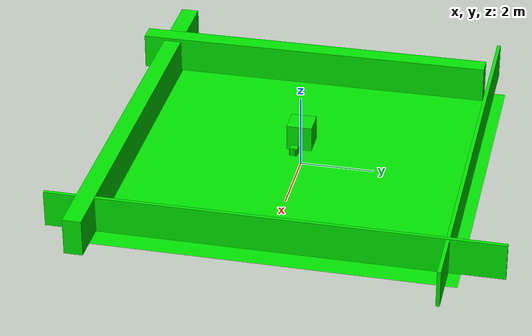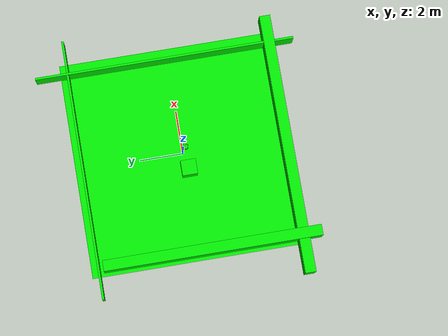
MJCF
<mujoco>
  <worldbody>
    <light diffuse=".5 .5 .5" pos="0 0 3" dir="0 0 -1" />
    <body pos="4.373862 0.1367815 0.5" name="test">
      <geom type="box" size="0.05 6 0.5" euler="0 0 0" rgba="0 .9 0 1" name="testGeom" />
    </body>
    <body pos="-0.0870266 4.638992 0.4942355" name="">
      <geom type="box" size="6 0.05 0.5" euler="0 0 0" rgba="0 .9 0 1" name="testGeom2"/>
    </body>
    <body pos="0 0 0" name="">
      <geom type="plane" size="5 5 1.110223E-16" euler="0 0 0" rgba="0 .9 0 1" name="testGeom3" />
    </body>
    <body pos="-0.4081016 -4.73991 0.5035648" name="">
      <geom type="box" size="6 0.25 0.5" euler="0 0 0" rgba="0 .9 0 1" name="testGeom4" />
    </body>
    <body pos="-4.595406 -0.5844338 0.5862885" name="">
      <geom type="box" size="0.25 5 0.5" euler="0 0 0" rgba="0 .9 0 1" name="testGeom5" />
    </body>
    <body pos="-0.7740588 -0.142272 0.5156202" name="agent">
      <joint type="free" name="agent_freeJoint" />
      <geom type="box" size="0.35 0.35 0.35" euler="0 0 0" rgba="0 .9 0 1" />
      <site name="agent_site_0" type="box" pos="1 0 0" size=".1 .1 .1" rgba="0 .9 0 1" euler="90 90 0" />
      <site name="agent_site_1" type="box" pos="1 0 0" size=".1 .1 .1" rgba="0 .9 0 1" euler="90 80 0" />
      <site name="agent_site_2" type="box" pos="1 0 0" size=".1 .1 .1" rgba="0 .9 0 1" euler="90 70 0" />
      <site name="agent_site_3" type="box" pos="1 0 0" size=".1 .1 .1" rgba="0 .9 0 1" euler="90 100 0" />
      <site name="agent_site_4" type="box" pos="1 0 0" size=".1 .1 .1" rgba="0 .9 0 1" euler="90 0 0" />
    </body>
  </worldbody>
  <sensor>
    <rangefinder name="agent_finder_0" site="agent_site_0" cutoff="20" />
    <rangefinder name="agent_finder_1" site="agent_site_1" cutoff="20" />
    <rangefinder name="agent_finder_2" site="agent_site_2" cutoff="20" />
    <rangefinder name="agent_finder_3" site="agent_site_3" cutoff="20" />
    <rangefinder name="agent_finder_4" site="agent_site_4" cutoff="20" />
  </sensor>
</mujoco>
